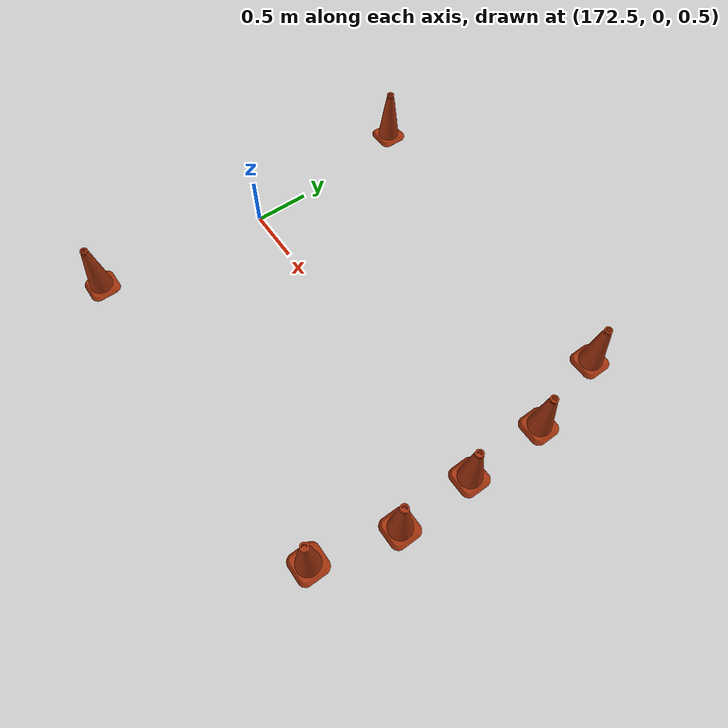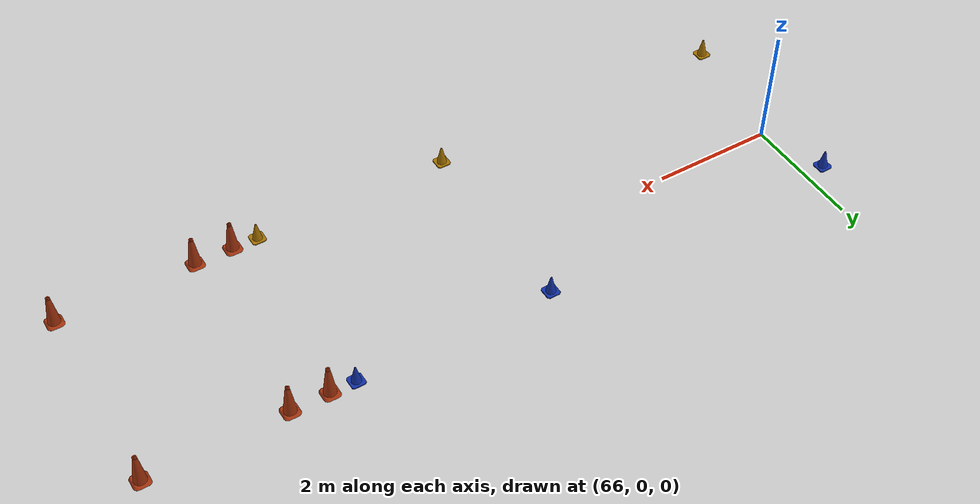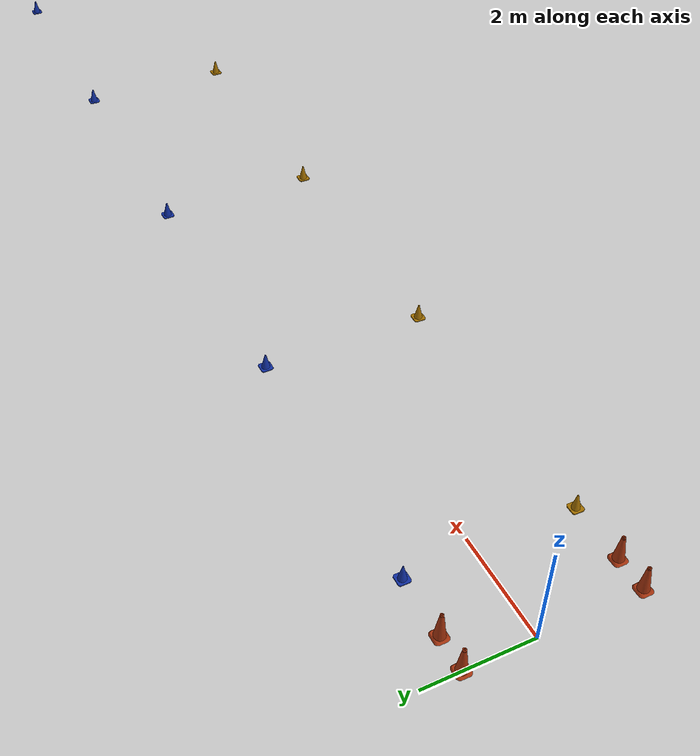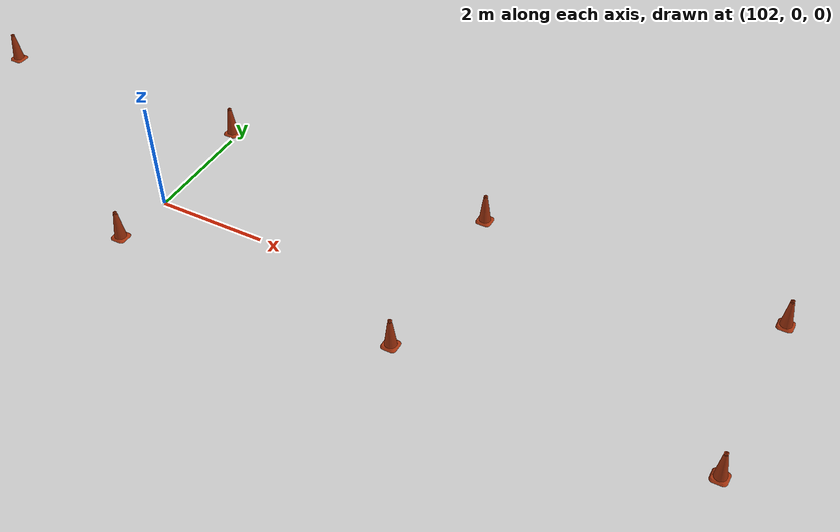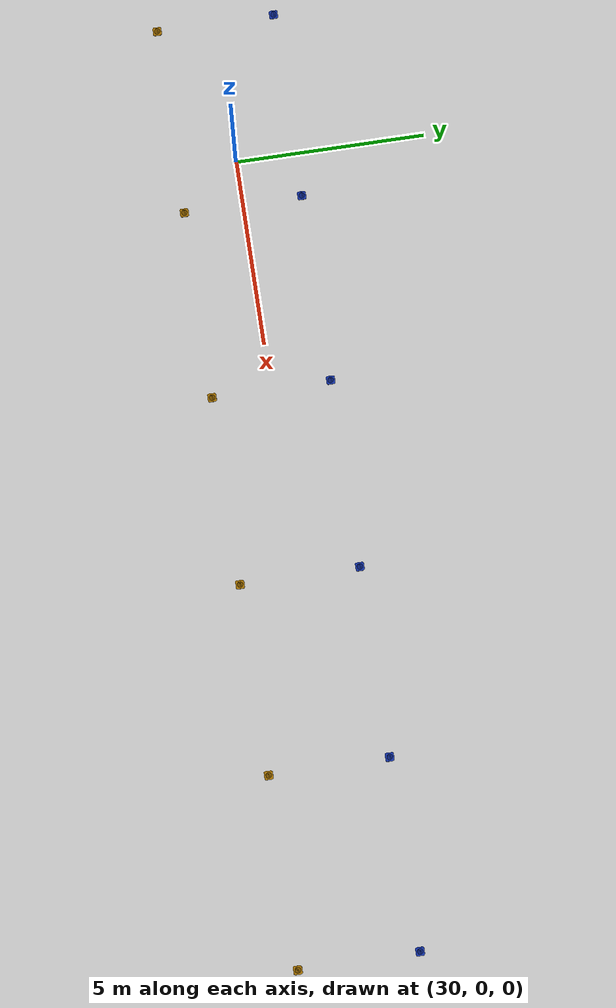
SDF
<?xml version="1.0" ?>
<sdf version="1.6">
  <world name="circle_track">
    <scene>
      <sky>
        <clouds>
          <speed>3</speed>
        </clouds>
      </sky>
      <ambient>1.0 1.0 1.0 1.0</ambient>
      <shadows>1</shadows>
    </scene>

    <include>
      <uri>model://ground_plane</uri>
    </include>

    <include>
      <uri>model://sun</uri>
    </include>

    <include>
      <uri>model://models/acceleration_track</uri>
      <name>track</name>
      <pose>0 0 0.5 0 0 0</pose>
    </include>

  </world>
</sdf>

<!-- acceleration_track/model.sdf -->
<sdf version='1.6'>
    <model name='acceleration_track'>

        <include>
            <pose>1.380000 1.550000 0.15 0 0 0</pose>
            <uri>model://models/blue_cone</uri>
            <name>blue_cone_1</name>

            <covariance x="0.01" y="0.01" xy="0.0"/>

        </include>

        <include>
            <pose>6.350000 1.550000 0.15 0 0 0</pose>
            <uri>model://models/blue_cone</uri>
            <name>blue_cone_2</name>

            <covariance x="0.01" y="0.01" xy="0.0"/>

        </include>

        <include>
            <pose>11.350000 1.550000 0.15 0 0 0</pose>
            <uri>model://models/blue_cone</uri>
            <name>blue_cone_3</name>

            <covariance x="0.01" y="0.01" xy="0.0"/>

        </include>

        <include>
            <pose>16.350000 1.550000 0.15 0 0 0</pose>
            <uri>model://models/blue_cone</uri>
            <name>blue_cone_4</name>

            <covariance x="0.01" y="0.01" xy="0.0"/>

        </include>

        <include>
            <pose>21.350000 1.550000 0.15 0 0 0</pose>
            <uri>model://models/blue_cone</uri>
            <name>blue_cone_5</name>

            <covariance x="0.01" y="0.01" xy="0.0"/>

        </include>

        <include>
            <pose>26.350000 1.550000 0.15 0 0 0</pose>
            <uri>model://models/blue_cone</uri>
            <name>blue_cone_6</name>

            <covariance x="0.01" y="0.01" xy="0.0"/>

        </include>

        <include>
            <pose>31.350000 1.550000 0.15 0 0 0</pose>
            <uri>model://models/blue_cone</uri>
            <name>blue_cone_7</name>

            <covariance x="0.01" y="0.01" xy="0.0"/>

        </include>

        <include>
            <pose>36.350000 1.550000 0.15 0 0 0</pose>
            <uri>model://models/blue_cone</uri>
            <name>blue_cone_8</name>

            <covariance x="0.01" y="0.01" xy="0.0"/>

        </include>

        <include>
            <pose>41.300000 1.550000 0.15 0 0 0</pose>
            <uri>model://models/blue_cone</uri>
            <name>blue_cone_9</name>

            <covariance x="0.01" y="0.01" xy="0.0"/>

        </include>

        <include>
            <pose>46.250000 1.550000 0.15 0 0 0</pose>
            <uri>model://models/blue_cone</uri>
            <name>blue_cone_10</name>

            <covariance x="0.01" y="0.01" xy="0.0"/>

        </include>

        <include>
            <pose>51.200000 1.550000 0.15 0 0 0</pose>
            <uri>model://models/blue_cone</uri>
            <name>blue_cone_11</name>

            <covariance x="0.01" y="0.01" xy="0.0"/>

        </include>

        <include>
            <pose>56.150000 1.550000 0.15 0 0 0</pose>
            <uri>model://models/blue_cone</uri>
            <name>blue_cone_12</name>

            <covariance x="0.01" y="0.01" xy="0.0"/>

        </include>

        <include>
            <pose>61.150000 1.550000 0.15 0 0 0</pose>
            <uri>model://models/blue_cone</uri>
            <name>blue_cone_13</name>

            <covariance x="0.01" y="0.01" xy="0.0"/>

        </include>

        <include>
            <pose>66.150000 1.550000 0.15 0 0 0</pose>
            <uri>model://models/blue_cone</uri>
            <name>blue_cone_14</name>

            <covariance x="0.01" y="0.01" xy="0.0"/>

        </include>

        <include>
            <pose>71.150000 1.550000 0.15 0 0 0</pose>
            <uri>model://models/blue_cone</uri>
            <name>blue_cone_15</name>

            <covariance x="0.01" y="0.01" xy="0.0"/>

        </include>

        <include>
            <pose>74.300000 1.550000 0.15 0 0 0</pose>
            <uri>model://models/blue_cone</uri>
            <name>blue_cone_16</name>

            <covariance x="0.01" y="0.01" xy="0.0"/>

        </include>

        <include>
            <pose>1.380000 -1.550000 0.15 0 0 0</pose>
            <uri>model://models/yellow_cone</uri>
            <name>yellow_cone_1</name>

            <covariance x="0.01" y="0.01" xy="0.0"/>

        </include>

        <include>
            <pose>6.350000 -1.550000 0.15 0 0 0</pose>
            <uri>model://models/yellow_cone</uri>
            <name>yellow_cone_2</name>

            <covariance x="0.01" y="0.01" xy="0.0"/>

        </include>

        <include>
            <pose>11.350000 -1.550000 0.15 0 0 0</pose>
            <uri>model://models/yellow_cone</uri>
            <name>yellow_cone_3</name>

            <covariance x="0.01" y="0.01" xy="0.0"/>

        </include>

        <include>
            <pose>16.350000 -1.550000 0.15 0 0 0</pose>
            <uri>model://models/yellow_cone</uri>
            <name>yellow_cone_4</name>

            <covariance x="0.01" y="0.01" xy="0.0"/>

        </include>

        <include>
            <pose>21.350000 -1.550000 0.15 0 0 0</pose>
            <uri>model://models/yellow_cone</uri>
            <name>yellow_cone_5</name>

            <covariance x="0.01" y="0.01" xy="0.0"/>

        </include>

        <include>
            <pose>26.350000 -1.550000 0.15 0 0 0</pose>
            <uri>model://models/yellow_cone</uri>
            <name>yellow_cone_6</name>

            <covariance x="0.01" y="0.01" xy="0.0"/>

        </include>

        <include>
            <pose>31.350000 -1.550000 0.15 0 0 0</pose>
            <uri>model://models/yellow_cone</uri>
            <name>yellow_cone_7</name>

            <covariance x="0.01" y="0.01" xy="0.0"/>

        </include>

        <include>
            <pose>36.350000 -1.550000 0.15 0 0 0</pose>
            <uri>model://models/yellow_cone</uri>
            <name>yellow_cone_8</name>

            <covariance x="0.01" y="0.01" xy="0.0"/>

        </include>

        <include>
            <pose>41.300000 -1.550000 0.15 0 0 0</pose>
            <uri>model://models/yellow_cone</uri>
            <name>yellow_cone_9</name>

            <covariance x="0.01" y="0.01" xy="0.0"/>

        </include>

        <include>
            <pose>46.250000 -1.550000 0.15 0 0 0</pose>
            <uri>model://models/yellow_cone</uri>
            <name>yellow_cone_10</name>

            <covariance x="0.01" y="0.01" xy="0.0"/>

        </include>

        <include>
            <pose>51.200000 -1.550000 0.15 0 0 0</pose>
            <uri>model://models/yellow_cone</uri>
            <name>yellow_cone_11</name>

            <covariance x="0.01" y="0.01" xy="0.0"/>

        </include>

        <include>
            <pose>56.150000 -1.550000 0.15 0 0 0</pose>
            <uri>model://models/yellow_cone</uri>
            <name>yellow_cone_12</name>

            <covariance x="0.01" y="0.01" xy="0.0"/>

        </include>

        <include>
            <pose>61.150000 -1.550000 0.15 0 0 0</pose>
            <uri>model://models/yellow_cone</uri>
            <name>yellow_cone_13</name>

            <covariance x="0.01" y="0.01" xy="0.0"/>

        </include>

        <include>
            <pose>66.150000 -1.550000 0.15 0 0 0</pose>
            <uri>model://models/yellow_cone</uri>
            <name>yellow_cone_14</name>

            <covariance x="0.01" y="0.01" xy="0.0"/>

        </include>

        <include>
            <pose>71.150000 -1.550000 0.15 0 0 0</pose>
            <uri>model://models/yellow_cone</uri>
            <name>yellow_cone_15</name>

            <covariance x="0.01" y="0.01" xy="0.0"/>

        </include>

        <include>
            <pose>74.300000 -1.550000 0.15 0 0 0</pose>
            <uri>model://models/yellow_cone</uri>
            <name>yellow_cone_16</name>

            <covariance x="0.01" y="0.01" xy="0.0"/>

        </include>

        <include>
            <pose>0.300000 1.550000 0.15 0 0 0</pose>
            <uri>model://models/big_cone</uri>
            <name>big_cone_1</name>

            <covariance x="0.01" y="0.01" xy="0.0"/>

        </include>

        <include>
            <pose>0.300000 -1.550000 0.15 0 0 0</pose>
            <uri>model://models/big_cone</uri>
            <name>big_cone_2</name>

            <covariance x="0.01" y="0.01" xy="0.0"/>

        </include>

        <include>
            <pose>-0.300000 1.550000 0.15 0 0 0</pose>
            <uri>model://models/big_cone</uri>
            <name>big_cone_3</name>

            <covariance x="0.01" y="0.01" xy="0.0"/>

        </include>

        <include>
            <pose>-0.300000 -1.550000 0.15 0 0 0</pose>
            <uri>model://models/big_cone</uri>
            <name>big_cone_4</name>

            <covariance x="0.01" y="0.01" xy="0.0"/>

        </include>

        <include>
            <pose>75.300000 1.550000 0.15 0 0 0</pose>
            <uri>model://models/big_cone</uri>
            <name>big_cone_5</name>

            <covariance x="0.01" y="0.01" xy="0.0"/>

        </include>

        <include>
            <pose>75.300000 -1.550000 0.15 0 0 0</pose>
            <uri>model://models/big_cone</uri>
            <name>big_cone_6</name>

            <covariance x="0.01" y="0.01" xy="0.0"/>

        </include>

        <include>
            <pose>74.700000 1.550000 0.15 0 0 0</pose>
            <uri>model://models/big_cone</uri>
            <name>big_cone_7</name>

            <covariance x="0.01" y="0.01" xy="0.0"/>

        </include>

        <include>
            <pose>74.700000 -1.550000 0.15 0 0 0</pose>
            <uri>model://models/big_cone</uri>
            <name>big_cone_8</name>

            <covariance x="0.01" y="0.01" xy="0.0"/>

        </include>

        <include>
            <pose>77.450000 1.550000 0.15 0 0 0</pose>
            <uri>model://models/big_cone</uri>
            <name>big_cone_1</name>

            <covariance x="0.01" y="0.01" xy="0.0"/>

        </include>

        <include>
            <pose>82.450000 1.550000 0.15 0 0 0</pose>
            <uri>model://models/big_cone</uri>
            <name>big_cone_2</name>

            <covariance x="0.01" y="0.01" xy="0.0"/>

        </include>

        <include>
            <pose>87.450000 1.550000 0.15 0 0 0</pose>
            <uri>model://models/big_cone</uri>
            <name>big_cone_3</name>

            <covariance x="0.01" y="0.01" xy="0.0"/>

        </include>

        <include>
            <pose>92.450000 1.550000 0.15 0 0 0</pose>
            <uri>model://models/big_cone</uri>
            <name>big_cone_4</name>

            <covariance x="0.01" y="0.01" xy="0.0"/>

        </include>

        <include>
            <pose>97.450000 1.550000 0.15 0 0 0</pose>
            <uri>model://models/big_cone</uri>
            <name>big_cone_5</name>

            <covariance x="0.01" y="0.01" xy="0.0"/>

        </include>

        <include>
            <pose>102.450000 1.550000 0.15 0 0 0</pose>
            <uri>model://models/big_cone</uri>
            <name>big_cone_6</name>

            <covariance x="0.01" y="0.01" xy="0.0"/>

        </include>

        <include>
            <pose>107.450000 1.550000 0.15 0 0 0</pose>
            <uri>model://models/big_cone</uri>
            <name>big_cone_7</name>

            <covariance x="0.01" y="0.01" xy="0.0"/>

        </include>

        <include>
            <pose>112.450000 1.550000 0.15 0 0 0</pose>
            <uri>model://models/big_cone</uri>
            <name>big_cone_8</name>

            <covariance x="0.01" y="0.01" xy="0.0"/>

        </include>

        <include>
            <pose>117.450000 1.550000 0.15 0 0 0</pose>
            <uri>model://models/big_cone</uri>
            <name>big_cone_9</name>

            <covariance x="0.01" y="0.01" xy="0.0"/>

        </include>

        <include>
            <pose>122.450000 1.550000 0.15 0 0 0</pose>
            <uri>model://models/big_cone</uri>
            <name>big_cone_10</name>

            <covariance x="0.01" y="0.01" xy="0.0"/>

        </include>

        <include>
            <pose>127.450000 1.550000 0.15 0 0 0</pose>
            <uri>model://models/big_cone</uri>
            <name>big_cone_11</name>

            <covariance x="0.01" y="0.01" xy="0.0"/>

        </include>

        <include>
            <pose>132.450000 1.550000 0.15 0 0 0</pose>
            <uri>model://models/big_cone</uri>
            <name>big_cone_12</name>

            <covariance x="0.01" y="0.01" xy="0.0"/>

        </include>

        <include>
            <pose>137.450000 1.550000 0.15 0 0 0</pose>
            <uri>model://models/big_cone</uri>
            <name>big_cone_13</name>

            <covariance x="0.01" y="0.01" xy="0.0"/>

        </include>

        <include>
            <pose>142.450000 1.550000 0.15 0 0 0</pose>
            <uri>model://models/big_cone</uri>
            <name>big_cone_14</name>

            <covariance x="0.01" y="0.01" xy="0.0"/>

        </include>

        <include>
            <pose>147.450000 1.550000 0.15 0 0 0</pose>
            <uri>model://models/big_cone</uri>
            <name>big_cone_15</name>

            <covariance x="0.01" y="0.01" xy="0.0"/>

        </include>

        <include>
            <pose>152.450000 1.550000 0.15 0 0 0</pose>
            <uri>model://models/big_cone</uri>
            <name>big_cone_16</name>

            <covariance x="0.01" y="0.01" xy="0.0"/>

        </include>

        <include>
            <pose>157.450000 1.550000 0.15 0 0 0</pose>
            <uri>model://models/big_cone</uri>
            <name>big_cone_17</name>

            <covariance x="0.01" y="0.01" xy="0.0"/>

        </include>

        <include>
            <pose>162.450000 1.550000 0.15 0 0 0</pose>
            <uri>model://models/big_cone</uri>
            <name>big_cone_18</name>

            <covariance x="0.01" y="0.01" xy="0.0"/>

        </include>

        <include>
            <pose>167.450000 1.550000 0.15 0 0 0</pose>
            <uri>model://models/big_cone</uri>
            <name>big_cone_19</name>

            <covariance x="0.01" y="0.01" xy="0.0"/>

        </include>

        <include>
            <pose>172.450000 1.550000 0.15 0 0 0</pose>
            <uri>model://models/big_cone</uri>
            <name>big_cone_20</name>

            <covariance x="0.01" y="0.01" xy="0.0"/>

        </include>

        <include>
            <pose>175.425000 1.375000 0.15 0 0 0</pose>
            <uri>model://models/big_cone</uri>
            <name>big_cone_21</name>

            <covariance x="0.01" y="0.01" xy="0.0"/>

        </include>

        <include>
            <pose>175.600000 -0.050000 0.15 0 0 0</pose>
            <uri>model://models/big_cone</uri>
            <name>big_cone_22</name>

            <covariance x="0.01" y="0.01" xy="0.0"/>

        </include>

        <include>
            <pose>175.600000 0.650000 0.15 0 0 0</pose>
            <uri>model://models/big_cone</uri>
            <name>big_cone_23</name>

            <covariance x="0.01" y="0.01" xy="0.0"/>

        </include>

        <include>
            <pose>77.450000 -1.550000 0.15 0 0 0</pose>
            <uri>model://models/big_cone</uri>
            <name>big_cone_24</name>

            <covariance x="0.01" y="0.01" xy="0.0"/>

        </include>

        <include>
            <pose>82.450000 -1.550000 0.15 0 0 0</pose>
            <uri>model://models/big_cone</uri>
            <name>big_cone_25</name>

            <covariance x="0.01" y="0.01" xy="0.0"/>

        </include>

        <include>
            <pose>87.450000 -1.550000 0.15 0 0 0</pose>
            <uri>model://models/big_cone</uri>
            <name>big_cone_26</name>

            <covariance x="0.01" y="0.01" xy="0.0"/>

        </include>

        <include>
            <pose>92.450000 -1.550000 0.15 0 0 0</pose>
            <uri>model://models/big_cone</uri>
            <name>big_cone_27</name>

            <covariance x="0.01" y="0.01" xy="0.0"/>

        </include>

        <include>
            <pose>97.450000 -1.550000 0.15 0 0 0</pose>
            <uri>model://models/big_cone</uri>
            <name>big_cone_28</name>

            <covariance x="0.01" y="0.01" xy="0.0"/>

        </include>

        <include>
            <pose>102.450000 -1.550000 0.15 0 0 0</pose>
            <uri>model://models/big_cone</uri>
            <name>big_cone_29</name>

            <covariance x="0.01" y="0.01" xy="0.0"/>

        </include>

        <include>
            <pose>107.450000 -1.550000 0.15 0 0 0</pose>
            <uri>model://models/big_cone</uri>
            <name>big_cone_30</name>

            <covariance x="0.01" y="0.01" xy="0.0"/>

        </include>

        <include>
            <pose>112.450000 -1.550000 0.15 0 0 0</pose>
            <uri>model://models/big_cone</uri>
            <name>big_cone_31</name>

            <covariance x="0.01" y="0.01" xy="0.0"/>

        </include>

        <include>
            <pose>117.450000 -1.550000 0.15 0 0 0</pose>
            <uri>model://models/big_cone</uri>
            <name>big_cone_32</name>

            <covariance x="0.01" y="0.01" xy="0.0"/>

        </include>

        <include>
            <pose>122.450000 -1.550000 0.15 0 0 0</pose>
            <uri>model://models/big_cone</uri>
            <name>big_cone_33</name>

            <covariance x="0.01" y="0.01" xy="0.0"/>

        </include>

        <include>
            <pose>127.450000 -1.550000 0.15 0 0 0</pose>
            <uri>model://models/big_cone</uri>
            <name>big_cone_34</name>

            <covariance x="0.01" y="0.01" xy="0.0"/>

        </include>

        <include>
            <pose>132.450000 -1.550000 0.15 0 0 0</pose>
            <uri>model://models/big_cone</uri>
            <name>big_cone_35</name>

            <covariance x="0.01" y="0.01" xy="0.0"/>

        </include>

        <include>
            <pose>137.450000 -1.550000 0.15 0 0 0</pose>
            <uri>model://models/big_cone</uri>
            <name>big_cone_36</name>

            <covariance x="0.01" y="0.01" xy="0.0"/>

        </include>

        <include>
            <pose>142.450000 -1.550000 0.15 0 0 0</pose>
            <uri>model://models/big_cone</uri>
            <name>big_cone_37</name>

            <covariance x="0.01" y="0.01" xy="0.0"/>

        </include>

        <include>
            <pose>147.450000 -1.550000 0.15 0 0 0</pose>
            <uri>model://models/big_cone</uri>
            <name>big_cone_38</name>

            <covariance x="0.01" y="0.01" xy="0.0"/>

        </include>

        <include>
            <pose>152.450000 -1.550000 0.15 0 0 0</pose>
            <uri>model://models/big_cone</uri>
            <name>big_cone_39</name>

            <covariance x="0.01" y="0.01" xy="0.0"/>

        </include>

        <include>
            <pose>157.450000 -1.550000 0.15 0 0 0</pose>
            <uri>model://models/big_cone</uri>
            <name>big_cone_40</name>

            <covariance x="0.01" y="0.01" xy="0.0"/>

        </include>

        <include>
            <pose>162.450000 -1.550000 0.15 0 0 0</pose>
            <uri>model://models/big_cone</uri>
            <name>big_cone_41</name>

            <covariance x="0.01" y="0.01" xy="0.0"/>

        </include>

        <include>
            <pose>167.450000 -1.550000 0.15 0 0 0</pose>
            <uri>model://models/big_cone</uri>
            <name>big_cone_42</name>

            <covariance x="0.01" y="0.01" xy="0.0"/>

        </include>

        <include>
            <pose>172.450000 -1.550000 0.15 0 0 0</pose>
            <uri>model://models/big_cone</uri>
            <name>big_cone_43</name>

            <covariance x="0.01" y="0.01" xy="0.0"/>

        </include>

        <include>
            <pose>175.425000 -1.375000 0.15 0 0 0</pose>
            <uri>model://models/big_cone</uri>
            <name>big_cone_44</name>

            <covariance x="0.01" y="0.01" xy="0.0"/>

        </include>

        <include>
            <pose>175.600000 -0.700000 0.15 0 0 0</pose>
            <uri>model://models/big_cone</uri>
            <name>big_cone_45</name>

            <covariance x="0.01" y="0.01" xy="0.0"/>

        </include>

        <static>0</static>
        <allow_auto_disable>1</allow_auto_disable>
    </model>
</sdf>

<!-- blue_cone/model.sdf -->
<sdf version='1.6'>
  <model name='blue_cone'>
    <link name='link'>
      <pose frame=''>0 0 0 0 0 0</pose>
      <inertial>
        <inertia>
          <ixx>0.0016</ixx>
          <ixy>0</ixy>
          <ixz>0</ixz>
          <iyy>0.0016</iyy>
          <iyz>0</iyz>
          <izz>0.0010</izz>
        </inertia>
        <mass>0.45</mass>
      </inertial>
      <visual name='visual'>
        <geometry>
          <mesh>
            <uri>model://meshes/cone_blue.dae</uri>
          </mesh>
        </geometry>
        <cast_shadows>1</cast_shadows>
      </visual>
      <collision name='collision'>
        <max_contacts>3</max_contacts>
        <geometry>
          <mesh>
            <uri>model://meshes/cone_blue.dae</uri>
          </mesh>
        </geometry>
      </collision>
    </link>
  </model>
</sdf>

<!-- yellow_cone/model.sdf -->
<sdf version='1.6'>
  <model name='yellow_cone'>
    <link name='link'>
      <pose frame=''>0 0 0 0 0 0</pose>
      <inertial>
        <inertia>
          <ixx>0.0016</ixx>
          <ixy>0</ixy>
          <ixz>0</ixz>
          <iyy>0.0016</iyy>
          <iyz>0</iyz>
          <izz>0.0010</izz>
        </inertia>
        <mass>0.45</mass>
      </inertial>
      <visual name='visual'>
        <geometry>
          <mesh>
            <uri>model://meshes/cone_yellow.dae</uri>
          </mesh>
        </geometry>
        <cast_shadows>1</cast_shadows>
      </visual>
      <collision name='collision'>
        <max_contacts>3</max_contacts>
        <geometry>
          <mesh>
            <uri>model://meshes/cone_yellow.dae</uri>
          </mesh>
        </geometry>
      </collision>
    </link>
  </model>
</sdf>

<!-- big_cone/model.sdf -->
<sdf version='1.6'>
  <model name='big_cone'>
    <link name='link'>
      <pose frame=''>0 0 0 0 0 0</pose>
      <inertial>
        <inertia>
          <ixx>0.0016</ixx>
          <ixy>0</ixy>
          <ixz>0</ixz>
          <iyy>0.0016</iyy>
          <iyz>0</iyz>
          <izz>0.0010</izz>
        </inertia>
        <mass>0.45</mass>
      </inertial>
      <visual name='visual'>
        <geometry>
          <mesh>
            <uri>model://meshes/cone_big.dae</uri>
          </mesh>
        </geometry>
        <cast_shadows>1</cast_shadows>
      </visual>
      <collision name='collision'>
        <max_contacts>3</max_contacts>
        <geometry>
          <mesh>
            <uri>model://meshes/cone_big.dae</uri>
          </mesh>
        </geometry>
      </collision>
    </link>
  </model>
</sdf>
